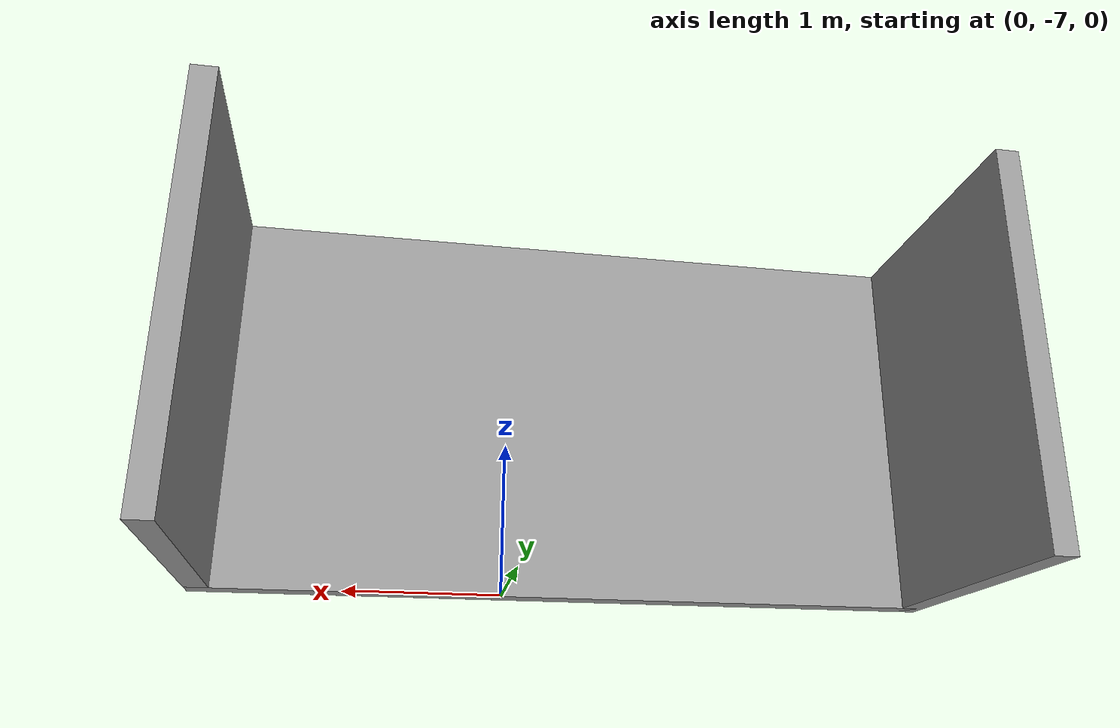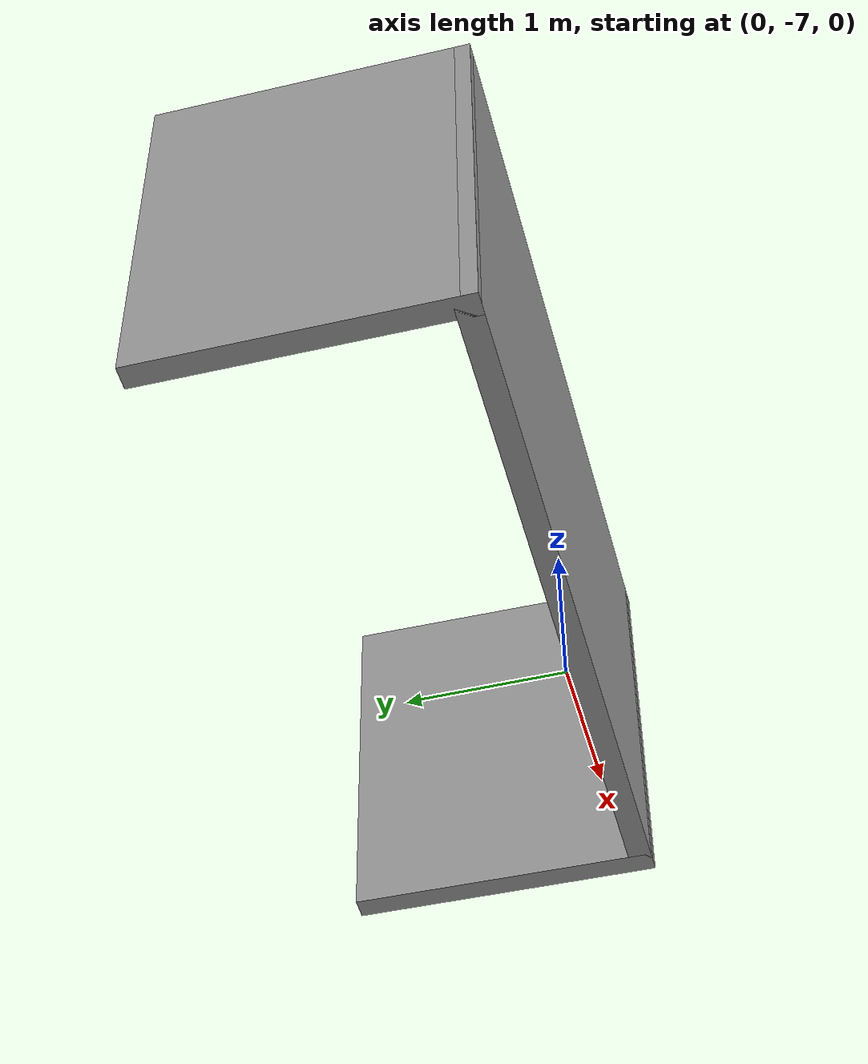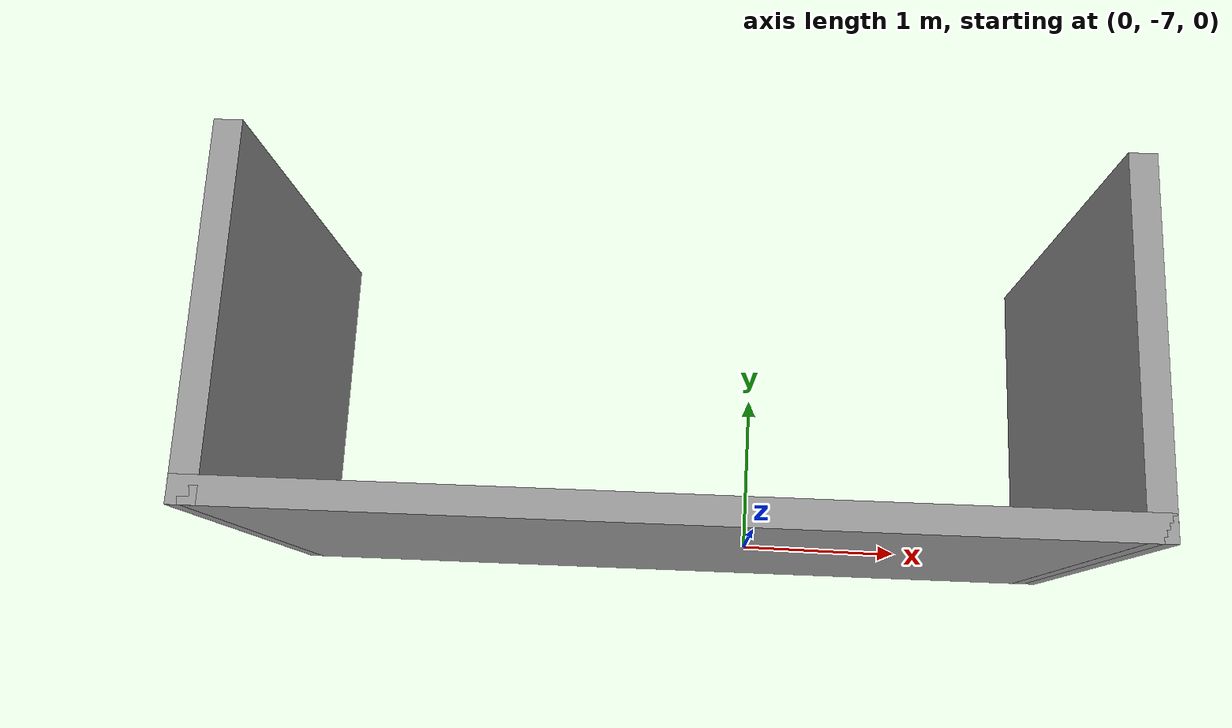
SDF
<?xml version='1.0'?>
<sdf version='1.6'>
  <model name='door'>
    <pose frame=''>-0.488718 -6.17274 0 0 -0 0</pose>
    <link name='Wall_0'>
      <collision name='Wall_0_Collision'>
        <geometry>
          <box>
            <size>4.85965 0.15 2.5</size>
          </box>
        </geometry>
        <pose frame=''>0 0 1.25 0 -0 0</pose>
      </collision>
      <visual name='Wall_0_Visual'>
        <pose frame=''>0 0 1.25 0 -0 0</pose>
        <geometry>
          <box>
            <size>4.85965 0.15 2.5</size>
          </box>
        </geometry>
        <material>
          <script>
            <uri>file://media/materials/scripts/gazebo.material</uri>
            <name>Gazebo/Grey</name>
          </script>
          <ambient>1 1 1 1</ambient>
        </material>
      </visual>
      <pose frame=''>0.011622 -0.924927 0 0 0 -3.13412</pose>
    </link>
    <link name='Wall_1'>
      <collision name='Wall_1_Collision'>
        <geometry>
          <box>
            <size>2 0.15 2.5</size>
          </box>
        </geometry>
        <pose frame=''>0 0 1.25 0 -0 0</pose>
      </collision>
      <visual name='Wall_1_Visual'>
        <pose frame=''>0 0 1.25 0 -0 0</pose>
        <geometry>
          <box>
            <size>2 0.15 2.5</size>
          </box>
        </geometry>
        <material>
          <script>
            <uri>file://media/materials/scripts/gazebo.material</uri>
            <name>Gazebo/Grey</name>
          </script>
          <ambient>1 1 1 1</ambient>
        </material>
      </visual>
      <pose frame=''>-2.35464 -0.01759 0 0 -0 1.58336</pose>
    </link>
    <link name='Wall_3'>
      <collision name='Wall_3_Collision'>
        <geometry>
          <box>
            <size>2 0.15 2.5</size>
          </box>
        </geometry>
        <pose frame=''>0 0 1.25 0 -0 0</pose>
      </collision>
      <visual name='Wall_3_Visual'>
        <pose frame=''>0 0 1.25 0 -0 0</pose>
        <geometry>
          <box>
            <size>2 0.15 2.5</size>
          </box>
        </geometry>
        <material>
          <script>
            <uri>file://media/materials/scripts/gazebo.material</uri>
            <name>Gazebo/Grey</name>
          </script>
          <ambient>1 1 1 1</ambient>
        </material>
      </visual>
      <pose frame=''>2.35464 0.017589 0 0 -0 1.58336</pose>
    </link>
    <static>1</static>
  </model>
</sdf>
